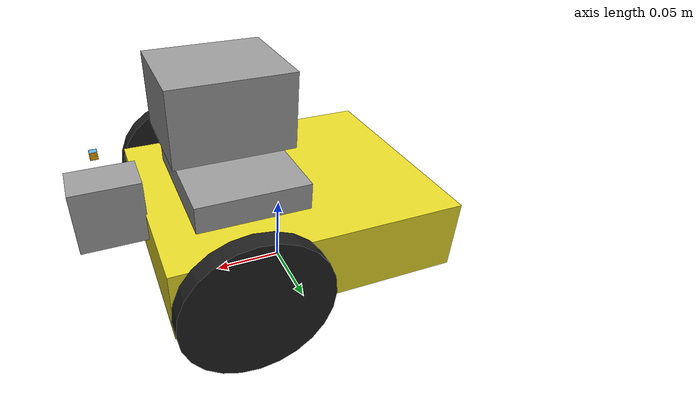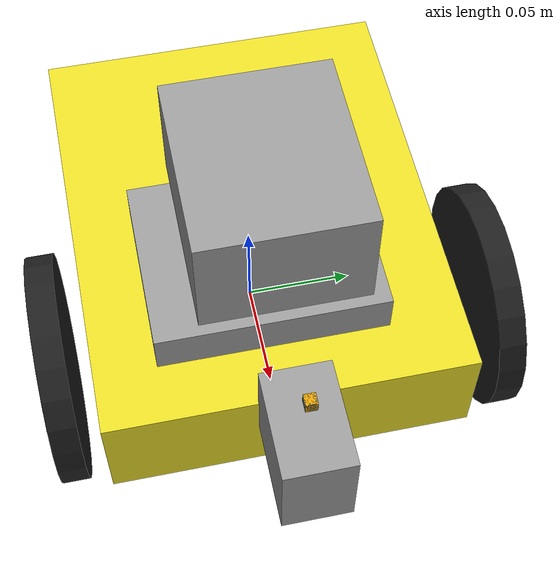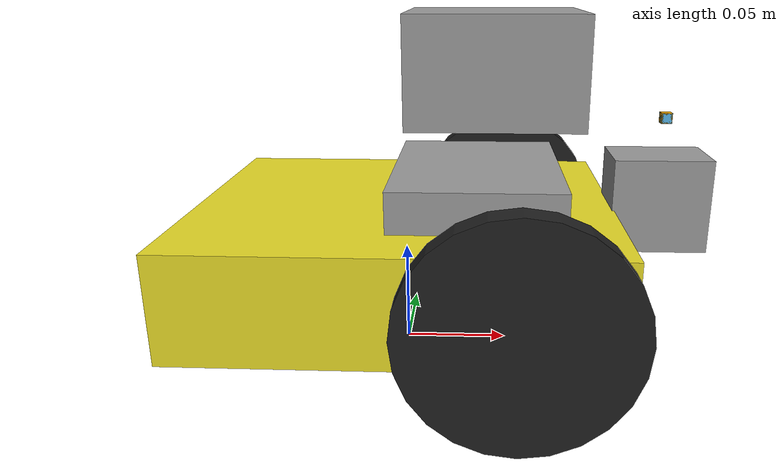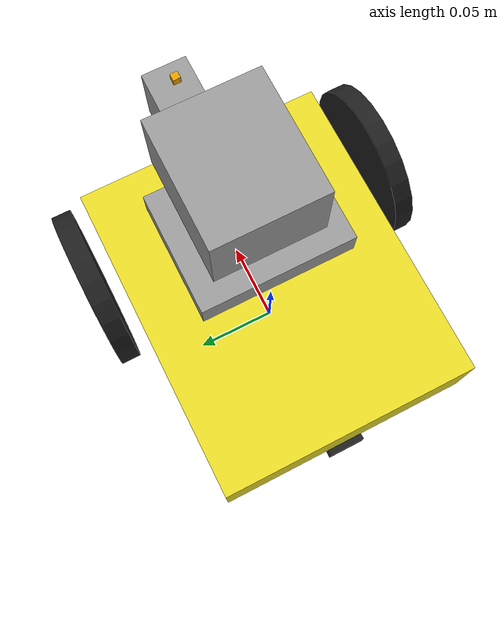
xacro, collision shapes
<?xml version="1.0"?>
<robot xmlns:xacro="http://www.ros.org/wiki/xacro" name="puzzlebot_jetson_lidar_ed">

  <!-- 1) Definimos el argumento prefix -->
  <xacro:arg name="prefix" default=""/>

  <!-- 2) Creamos una propiedad global para prefix -->
  <xacro:property name="prefix" value="$(arg prefix)"/>

  <!-- 3) Includes sin usar xacro:args -->
  <xacro:include filename="$(find familiapachuquena_nav2_puzzlebot)/urdf/mcr2_mechanical/puzzlebot_jetson_lidar_base.urdf.xacro"/>
  <xacro:include filename="$(find familiapachuquena_nav2_puzzlebot)/urdf/mcr2_robots/jetson_lidar_ed/parameters_jetson_lidar_ed.xacro"/>
  <xacro:include filename="$(find familiapachuquena_nav2_puzzlebot)/urdf/mcr2_misc/materials.xacro"/>
  <xacro:include filename="$(find familiapachuquena_nav2_puzzlebot)/urdf/mcr2_misc/macros.xacro"/>
  <xacro:include filename="$(find familiapachuquena_nav2_puzzlebot)/urdf/mcr2_sensors/laser_camera_bracket.xacro"/>
  <xacro:include filename="$(find familiapachuquena_nav2_puzzlebot)/urdf/mcr2_sensors/lidar.xacro"/>
  <xacro:include filename="$(find familiapachuquena_nav2_puzzlebot)/urdf/mcr2_control/gazebo_control.xacro"/>

  <!-- 4) Invocamos los macros / enlaces -->
  <xacro:puzzlebot_jetson_lidar_ed_base prefix="${prefix}"/>
  <xacro:laser_camera_sensor         prefix="${prefix}"/>
  <xacro:rpi_lidar_sensor           prefix="${prefix}"
                                    frame_name="laser_frame"
                                    topic_name="scan"
                                    update_rate="40"/>
  <xacro:puzzlebot_control           prefix="${prefix}"/>

</robot>

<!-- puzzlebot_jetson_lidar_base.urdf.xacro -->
<robot xmlns:xacro="http://www.ros.org/wiki/xacro" name="puzzlebot_hacker_ed_base">

<xacro:macro name="puzzlebot_jetson_lidar_ed_base" params="prefix">

    <!-- Dummy link to fix robot chassis -->
    <link name="${prefix}base_footprint">
    </link>

    <link name="${prefix}base_link">
        <visual>
            <origin xyz="${chassis_mesh_pos_x} ${chassis_mesh_pos_y} ${chassis_mesh_pos_z}" rpy="${chassis_mesh_pos_r} ${chassis_mesh_pos_p} ${chassis_mesh_pos_w}"/>
            <geometry>
                <mesh filename="file://${mesh_puzzlebot_chassis}"/>
            </geometry>
            <material name="yellow"/>
        </visual>

        <collision>
            <origin xyz="${chassis_collision_pos_x} ${chassis_collision_pos_y} ${chassis_collision_pos_z}" rpy="${chassis_collision_pos_r} ${chassis_collision_pos_p} ${chassis_collision_pos_w}"/>
            <geometry>
                <box size="${chassis_length} ${chassis_width} ${chassis_height}"/>
            </geometry>
        </collision>

        <inertial>
            <origin xyz="-${chassis_inertia_pos_x} ${chassis_inertia_pos_y} ${chassis_inertia_pos_z}" rpy="${chassis_inertia_pos_r} ${chassis_inertia_pos_p} ${chassis_inertia_pos_w}"/>
            <mass value="${chassis_mass}"/>
            <xacro:box_inertia mass="${chassis_mass}" x="${chassis_length}" y="${chassis_width}" z="${chassis_height}" />
        </inertial>
    </link>

    <link name="${prefix}wheel_left_link">
        <visual>
            <origin xyz="${wheel_mesh_pos_x} ${wheel_mesh_pos_y} ${wheel_mesh_pos_z}" rpy="${wheel_mesh_pos_r} ${wheel_mesh_pos_p} ${wheel_mesh_pos_w}" />
            <geometry>
                <mesh filename="file://${mesh_puzzlebot_wheel}"/>
            </geometry>
            <material name="black"/>
        </visual>

        <collision>
            <origin xyz="${wheel_collision_pos_x} ${wheel_collision_pos_y} ${wheel_collision_pos_z}" rpy="${wheel_collision_pos_r} ${wheel_collision_pos_p} ${wheel_collision_pos_w}"/>
            <geometry>
                <cylinder length="${wheel_height}" radius="${wheel_radius}" />
            </geometry>
        </collision>

        <inertial>
            <origin xyz="${wheel_inertia_pos_x} ${wheel_inertia_pos_y} ${wheel_inertia_pos_z}" rpy="${wheel_inertia_pos_r} ${wheel_inertia_pos_p} ${wheel_inertia_pos_w}"/>
            <mass value="${wheel_mass}"/>
            <xacro:cylinderical_tube_inertia r1="${wheel_radius}" r2="${wheel_radius/4.0}" height="${wheel_height}" mass="${wheel_mass}"/>
        </inertial>
    </link>

    <link name="${prefix}wheel_right_link">
        <visual>
            <origin xyz="${wheel_mesh_pos_x} ${wheel_mesh_pos_y} ${wheel_mesh_pos_z}" rpy="-${wheel_mesh_pos_r} ${wheel_mesh_pos_p} ${wheel_mesh_pos_w}" />
            <geometry>
                <mesh filename="file://${mesh_puzzlebot_wheel}"/>
            </geometry>
            <material name="black"/>
        </visual>

        <collision>
            <origin xyz="${wheel_collision_pos_x} ${wheel_collision_pos_y} ${wheel_collision_pos_z}" rpy="-${wheel_collision_pos_r} ${wheel_collision_pos_p} ${wheel_collision_pos_w}"/>
            <geometry>
                <cylinder length="${wheel_height}" radius="${wheel_radius}" />
            </geometry>
        </collision>

        <inertial>
            <origin xyz="${wheel_inertia_pos_x} ${wheel_inertia_pos_y} ${wheel_inertia_pos_z}" rpy="-${wheel_inertia_pos_r} ${wheel_inertia_pos_p} ${wheel_inertia_pos_w}"/>
            <mass value="${wheel_mass}"/>
            <xacro:cylinderical_tube_inertia r1="${wheel_radius}" r2="${wheel_radius/4.0}" height="${wheel_height}" mass="${wheel_mass}"/>
        </inertial>
    </link>

    <link name="${prefix}caster_holder_link">
        <visual>
            <origin xyz="${casterholder_mesh_pos_x} ${casterholder_mesh_pos_y} ${casterholder_mesh_pos_z}" rpy="${casterholder_mesh_pos_r} ${casterholder_mesh_pos_p} ${casterholder_mesh_pos_w}"/>
            <geometry>
                <mesh filename="file://${mesh_puzzlebot_caster}"/>
            </geometry>
            <material name="black"/>
        </visual>

        <collision>
            <origin xyz="${casterholder_collision_pos_x} ${casterholder_collision_pos_y} ${casterholder_collision_pos_z}" rpy="${casterholder_collision_pos_r} ${casterholder_collision_pos_p} ${casterholder_collision_pos_w}"/>
            <geometry>
                <box size="${casterholder_length} ${casterholder_width} ${casterholder_height}"/>
            </geometry>
        </collision>

        <inertial>
            <origin xyz="${casterholder_inertia_pos_x} ${casterholder_inertia_pos_y} ${casterholder_inertia_pos_z}" rpy="${casterholder_inertia_pos_r} ${casterholder_inertia_pos_p} ${casterholder_inertia_pos_w}"/>
            <mass value="${casterholder_mass}"/>
            <xacro:box_inertia mass="${casterholder_mass}" x="${casterholder_length}" y="${casterholder_width}" z="${casterholder_height}" />
        </inertial>
    </link>

    <link name="${prefix}wheel_caster_link">
        <collision>
            <origin xyz="${casterball_collision_pos_x} ${casterball_collision_pos_y} ${casterball_collision_pos_z}" rpy="${casterball_collision_pos_r} ${casterball_collision_pos_p} ${casterball_collision_pos_w}"/>
            <geometry>
                <sphere radius="${casterball_radius}"/>
            </geometry>
        </collision>

        <inertial>
            <origin xyz="${casterball_inertia_pos_x} ${casterball_inertia_pos_y} ${casterball_inertia_pos_z}" rpy="${casterball_inertia_pos_r} ${casterball_inertia_pos_p} ${casterball_inertia_pos_w}"/>
            <mass value="${casterball_mass}"/>
            <xacro:solid_sphere_inertia mass="${casterball_mass}" radius="${casterball_radius}" />
        </inertial>
    </link>

    <link name="${prefix}jetson_link">
        <visual>
            <origin xyz="${jetson_mesh_pos_x} ${jetson_mesh_pos_y} ${jetson_mesh_pos_z}" rpy="${jetson_mesh_pos_r} ${jetson_mesh_pos_p} ${jetson_mesh_pos_w}"/>
            <geometry>
                <mesh filename="file://${mesh_puzzlebot_jetson}"/>
            </geometry>
            <material name="grey"/>
        </visual>

        <collision>
            <origin xyz="${jetson_collision_pos_x} ${jetson_collision_pos_y} ${jetson_collision_pos_z}" rpy="${jetson_collision_pos_r} ${jetson_collision_pos_p} ${jetson_collision_pos_w}"/>
            <geometry>
                <box size="${jetson_length} ${jetson_width} ${jetson_height+jetson_offset}"/>
            </geometry>
        </collision>

        <inertial>
            <origin xyz="${jetson_inertia_pos_x} ${jetson_inertia_pos_y} ${jetson_inertia_pos_z}" rpy="${jetson_inertia_pos_r} ${jetson_inertia_pos_p} ${jetson_inertia_pos_w}"/>
            <mass value="${jetson_mass}"/>
            <xacro:box_inertia mass="${jetson_mass}" x="${jetson_length}" y="${jetson_width}" z="${jetson_height}" />
        </inertial>
    </link>

    <!--JOINTS-->

    <joint name="${prefix}chassis_joint" type="fixed">
        <parent link="${prefix}base_footprint"/>
        <child link="${prefix}base_link"/>
        <origin xyz="${chassis_pos_x} ${chassis_pos_y} ${chassis_pos_z}" rpy="${chassis_pos_r} ${chassis_pos_p} ${chassis_pos_w}"/>
    </joint>

    <joint name="${prefix}wheel_right_joint" type="continuous">
        <parent link="${prefix}base_link"/>
        <child link="${prefix}wheel_right_link"/>
        <origin xyz="${wheel_pos_x} -${wheel_pos_y} ${wheel_pos_z}" rpy="${wheel_pos_r} ${wheel_pos_p} ${wheel_pos_w}"/>
        <axis xyz="0 1 0"/>
    </joint>

    <joint name="${prefix}wheel_left_joint" type="continuous">
        <parent link="${prefix}base_link"/>
        <child link="${prefix}wheel_left_link"/>
        <origin xyz="${wheel_pos_x} ${wheel_pos_y} ${wheel_pos_z}" rpy="${wheel_pos_r} ${wheel_pos_p} ${wheel_pos_w}"/>
        <axis xyz="0 1 0"/>
    </joint>

    <joint name="${prefix}caster_holder_joint" type="fixed">
        <parent link="${prefix}base_link"/>
        <child link="${prefix}caster_holder_link"/>
        <origin xyz="${casterholder_pos_x} ${casterholder_pos_y} ${casterholder_pos_z}" rpy="${casterholder_pos_r} ${casterholder_pos_p} ${casterholder_pos_w}"/>
    </joint>

    <joint name="${prefix}wheel_caster_joint" type="fixed">
        <parent link="${prefix}caster_holder_link"/>
        <child link="${prefix}wheel_caster_link"/>
        <origin xyz="${casterball_pos_x} ${casterball_pos_y} ${casterball_pos_z}" rpy="${casterball_pos_r} ${casterball_pos_p} ${casterball_pos_w}"/>
    </joint>

    <joint name="${prefix}jetson_joint" type="fixed">
        <parent link="${prefix}base_link"/>
        <child link="${prefix}jetson_link"/>
        <origin xyz="${jetson_pos_x} ${jetson_pos_y} ${jetson_pos_z}" rpy="${jetson_pos_r} ${jetson_pos_p} ${jetson_pos_w}"/>
    </joint>

    <gazebo reference="${prefix}wheel_left_link">
        <mu1>1.0</mu1>
        <mu2>1.0</mu2>
        <kp>700000.0</kp>
        <kd>80.0</kd>
        <minDepth>0.001</minDepth>
        <maxVel>0.1</maxVel>
        <material>Gazebo/Black</material>
        <fdir1>1 0 0</fdir1>
    </gazebo>

    <gazebo reference="${prefix}wheel_right_link">
        <mu1>1.0</mu1>
        <mu2>1.0</mu2>
        <kp>700000.0</kp>
        <kd>80.0</kd>
        <minDepth>0.001</minDepth>
        <maxVel>0.1</maxVel>
        <material>Gazebo/Black</material>
        <fdir1>1 0 0</fdir1>
    </gazebo>

    <gazebo reference="${prefix}wheel_caster_link">
        <mu1>0.08</mu1>
        <mu2>0.08</mu2>
        <kp>700000.0</kp>
        <kd>80.0</kd>
        <minDepth>0.001</minDepth>
        <maxVel>0.1</maxVel>
        <fdir1>1 0 0</fdir1>
        <material>Gazebo/Black</material>
    </gazebo>

</xacro:macro>

<!-- ==== Transmissions para ros2_control ==== -->
  <transmission name="left_wheel_trans">
    <type>transmission_interface/SimpleTransmission</type>
    <joint name="${prefix}wheel_left_joint">
      <hardwareInterface>hardware_interface/VelocityJointInterface</hardwareInterface>
    </joint>
    <actuator name="left_wheel_motor">
      <mechanicalReduction>1</mechanicalReduction>
    </actuator>
  </transmission>

  <transmission name="right_wheel_trans">
    <type>transmission_interface/SimpleTransmission</type>
    <joint name="${prefix}wheel_right_joint">
      <hardwareInterface>hardware_interface/VelocityJointInterface</hardwareInterface>
    </joint>
    <actuator name="right_wheel_motor">
      <mechanicalReduction>1</mechanicalReduction>
    </actuator>
  </transmission>

  <!-- ==== Plugin ros2_control para Ignition Gazebo (Sim 7) ==== -->
  <gazebo>
    <plugin name="ros2_control" filename="libignition_ros2_control.so"/>
  </gazebo>
</robot>

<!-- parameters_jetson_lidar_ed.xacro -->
<robot xmlns:xacro="http://www.ros.org/wiki/xacro">

    <!--General parameters-->
    <xacro:property name="PI" value="3.1415926535897931"/>

    <!--Puzzlebot parameters-->
        <!--General parameters-->
            <xacro:property name="wheel_base_distance" value="0.19"/>

    <!--Chassis-->
        <!--Chassis Inertial/Collision parameters-->
            <xacro:property name="chassis_mass" value="0.351"/>
            <xacro:property name="chassis_length" value="0.2"/>
            <xacro:property name="chassis_width" value="0.16"/>
            <xacro:property name="chassis_height" value="0.0503"/>

            <xacro:property name="chassis_inertia_pos_x" value="0.00"/>
            <xacro:property name="chassis_inertia_pos_y" value="0.0"/>
            <xacro:property name="chassis_inertia_pos_z" value="0.00"/>
            <xacro:property name="chassis_inertia_pos_r" value="0.00"/>
            <xacro:property name="chassis_inertia_pos_p" value="0.0"/>
            <xacro:property name="chassis_inertia_pos_w" value="0.0"/>

            <xacro:property name="chassis_collision_pos_x" value="0.0"/>
            <xacro:property name="chassis_collision_pos_y" value="0.0"/>
            <xacro:property name="chassis_collision_pos_z" value="0.0"/>
            <xacro:property name="chassis_collision_pos_r" value="0.0"/>
            <xacro:property name="chassis_collision_pos_p" value="0.0"/>
            <xacro:property name="chassis_collision_pos_w" value="0.0"/>

        <!--Chassis Visual parameters-->
            <xacro:property name="chassis_mesh_pos_x" value="0.0"/>
            <xacro:property name="chassis_mesh_pos_y" value="0.0"/>
            <xacro:property name="chassis_mesh_pos_z" value="0.0"/>
            <xacro:property name="chassis_mesh_pos_r" value="0.0"/>
            <xacro:property name="chassis_mesh_pos_p" value="0.0"/>
            <xacro:property name="chassis_mesh_pos_w" value="0.0"/>

        <!--Chassis Joint parameters-->
            <xacro:property name="chassis_pos_x" value="0.0"/>
            <xacro:property name="chassis_pos_y" value="0.0"/>
            <xacro:property name="chassis_pos_z" value="0.05"/>
            <xacro:property name="chassis_pos_r" value="0.0"/>
            <xacro:property name="chassis_pos_p" value="0.0"/>
            <xacro:property name="chassis_pos_w" value="0.0"/>

    <!--Caster Holder-->
        <!--Caster Holder Inertial/Collision parameters-->
            <xacro:property name="casterholder_mass" value="0.007"/>
            <xacro:property name="casterholder_length" value="0.0175"/>
            <xacro:property name="casterholder_width" value="0.023"/>
            <xacro:property name="casterholder_height" value="0.011150"/>

            <xacro:property name="casterholder_inertia_pos_x" value="0.0"/>
            <xacro:property name="casterholder_inertia_pos_y" value="0.0"/>
            <xacro:property name="casterholder_inertia_pos_z" value="0.0"/>
            <xacro:property name="casterholder_inertia_pos_r" value="0.0"/>
            <xacro:property name="casterholder_inertia_pos_p" value="0.0"/>
            <xacro:property name="casterholder_inertia_pos_w" value="0.0"/>

            <xacro:property name="casterholder_collision_pos_x" value="0.0"/>
            <xacro:property name="casterholder_collision_pos_y" value="0.0"/>
            <xacro:property name="casterholder_collision_pos_z" value="0.0"/>
            <xacro:property name="casterholder_collision_pos_r" value="0.0"/>
            <xacro:property name="casterholder_collision_pos_p" value="0.0"/>
            <xacro:property name="casterholder_collision_pos_w" value="0.0"/>

        <!--Caster Holder Visual parameters-->
            <xacro:property name="casterholder_mesh_pos_x" value="0.0"/>
            <xacro:property name="casterholder_mesh_pos_y" value="0.0"/>
            <xacro:property name="casterholder_mesh_pos_z" value="-0.012"/>
            <xacro:property name="casterholder_mesh_pos_r" value="0.0"/>
            <xacro:property name="casterholder_mesh_pos_p" value="0.0"/>
            <xacro:property name="casterholder_mesh_pos_w" value="0.0"/>

        <!--Caster Holder Joint parameters-->
            <xacro:property name="casterholder_pos_x" value="-0.095"/>
            <xacro:property name="casterholder_pos_y" value="0.0"/>
            <xacro:property name="casterholder_pos_z" value="-0.030725"/>
            <xacro:property name="casterholder_pos_r" value="0.0"/>
            <xacro:property name="casterholder_pos_p" value="0.0"/>
            <xacro:property name="casterholder_pos_w" value="0.0"/>

    <!--Caster Ball-->
        <!--Caster Ball Inertial/Collision parameters-->
            <xacro:property name="casterball_mass" value="0.009"/>
            <xacro:property name="casterball_radius" value="0.0065"/>

            <xacro:property name="casterball_inertia_pos_x" value="0.0"/>
            <xacro:property name="casterball_inertia_pos_y" value="0.0"/>
            <xacro:property name="casterball_inertia_pos_z" value="0.0"/>
            <xacro:property name="casterball_inertia_pos_r" value="0.0"/>
            <xacro:property name="casterball_inertia_pos_p" value="0.0"/>
            <xacro:property name="casterball_inertia_pos_w" value="0.0"/>

            <xacro:property name="casterball_collision_pos_x" value="0.0"/>
            <xacro:property name="casterball_collision_pos_y" value="0.0"/>
            <xacro:property name="casterball_collision_pos_z" value="0.0"/>
            <xacro:property name="casterball_collision_pos_r" value="0.0"/>
            <xacro:property name="casterball_collision_pos_p" value="0.0"/>
            <xacro:property name="casterball_collision_pos_w" value="0.0"/>

        <!--Caster Ball Visual parameters-->
            <xacro:property name="casterball_mesh_pos_x" value="0.0"/>
            <xacro:property name="casterball_mesh_pos_y" value="0.0"/>
            <xacro:property name="casterball_mesh_pos_z" value="0.0"/>
            <xacro:property name="casterball_mesh_pos_r" value="0.0"/>
            <xacro:property name="casterball_mesh_pos_p" value="0.0"/>
            <xacro:property name="casterball_mesh_pos_w" value="0.0"/>

        <!--Caster Ball Joint parameters-->
            <xacro:property name="casterball_pos_x" value="0.0"/>
            <xacro:property name="casterball_pos_y" value="0.0"/>
            <xacro:property name="casterball_pos_z" value="-0.012538"/>
            <xacro:property name="casterball_pos_r" value="0.0"/>
            <xacro:property name="casterball_pos_p" value="0.0"/>
            <xacro:property name="casterball_pos_w" value="0.0"/>

    <!--Wheel-->
        <!--Wheel Inertial/Collision parameters-->
            <xacro:property name="wheel_mass" value="0.027"/>
            <xacro:property name="wheel_height" value="0.012"/>
            <xacro:property name="wheel_radius" value="0.05"/>

            <xacro:property name="wheel_inertia_pos_x" value="0.0"/>
            <xacro:property name="wheel_inertia_pos_y" value="0.0"/>
            <xacro:property name="wheel_inertia_pos_z" value="0.0"/>
            <xacro:property name="wheel_inertia_pos_r" value="${PI/2}"/>
            <xacro:property name="wheel_inertia_pos_p" value="0.0"/>
            <xacro:property name="wheel_inertia_pos_w" value="0.0"/>

            <xacro:property name="wheel_collision_pos_x" value="0.0"/>
            <xacro:property name="wheel_collision_pos_y" value="0.0"/>
            <xacro:property name="wheel_collision_pos_z" value="0.0"/>
            <xacro:property name="wheel_collision_pos_r" value="${PI/2}"/>
            <xacro:property name="wheel_collision_pos_p" value="0.0"/>
            <xacro:property name="wheel_collision_pos_w" value="0.0"/>

        <!--Wheel Visual parameters-->
            <xacro:property name="wheel_mesh_pos_x" value="0.0"/>
            <xacro:property name="wheel_mesh_pos_y" value="0.0"/>
            <xacro:property name="wheel_mesh_pos_z" value="0.0"/>
            <xacro:property name="wheel_mesh_pos_r" value="${PI/2}"/>
            <xacro:property name="wheel_mesh_pos_p" value="0.0"/>
            <xacro:property name="wheel_mesh_pos_w" value="0.0"/>

        <!--Wheel Joint parameters-->
            <xacro:property name="wheel_pos_x" value="0.052"/>
            <xacro:property name="wheel_pos_y" value="${wheel_base_distance/2}"/>
            <xacro:property name="wheel_pos_z" value="0.0"/>
            <xacro:property name="wheel_pos_r" value="0.0"/>
            <xacro:property name="wheel_pos_p" value="0.0"/>
            <xacro:property name="wheel_pos_w" value="0.0"/>

    <!--NVIDIA Jetson-->
        <!--Jetson Inertial/Collision parameters-->
            <xacro:property name="jetson_mass" value="0.131"/>
            <xacro:property name="jetson_length" value="0.079"/>
            <xacro:property name="jetson_width" value="0.1"/>
            <xacro:property name="jetson_height" value="0.028271"/>
            <xacro:property name="jetson_offset" value="0.01"/>

            <xacro:property name="jetson_inertia_pos_x" value="0.0075"/>
            <xacro:property name="jetson_inertia_pos_y" value="0.00175"/>
            <xacro:property name="jetson_inertia_pos_z" value="${jetson_offset/2}"/>
            <xacro:property name="jetson_inertia_pos_r" value="0.0"/>
            <xacro:property name="jetson_inertia_pos_p" value="0.0"/>
            <xacro:property name="jetson_inertia_pos_w" value="0.0"/>

            <xacro:property name="jetson_collision_pos_x" value="0.0"/>
            <xacro:property name="jetson_collision_pos_y" value="0.0"/>
            <xacro:property name="jetson_collision_pos_z" value="0.0"/>
            <xacro:property name="jetson_collision_pos_r" value="0.0"/>
            <xacro:property name="jetson_collision_pos_p" value="0.0"/>
            <xacro:property name="jetson_collision_pos_w" value="0.0"/>

        <!--jetson Visual parameters-->
            <xacro:property name="jetson_mesh_pos_x" value="0.0"/>
            <xacro:property name="jetson_mesh_pos_y" value="0.0"/>
            <xacro:property name="jetson_mesh_pos_z" value="0.0"/>
            <xacro:property name="jetson_mesh_pos_r" value="0.0"/>
            <xacro:property name="jetson_mesh_pos_p" value="0.0"/>
            <xacro:property name="jetson_mesh_pos_w" value="0.0"/>

        <!--jetson Joint parameters-->
            <xacro:property name="jetson_pos_x" value="0.035"/>
            <xacro:property name="jetson_pos_y" value="-0.003"/>
            <xacro:property name="jetson_pos_z" value="${chassis_height/2}"/>
            <xacro:property name="jetson_pos_r" value="0.0"/>
            <xacro:property name="jetson_pos_p" value="0.0"/>
            <xacro:property name="jetson_pos_w" value="0.0"/>

    <!--Meshes -->
        <xacro:property name="mesh_puzzlebot_chassis"  value="$(find m3_fampach)/meshes/bases/Puzzlebot_Jetson_Lidar_Edition_Base.stl" />
        <xacro:property name="mesh_puzzlebot_wheel"  value="$(find m3_fampach)/meshes/wheels/Puzzlebot_Wheel.stl" />
        <xacro:property name="mesh_puzzlebot_caster"  value="$(find m3_fampach)/meshes/wheels/Puzzlebot_Caster_Wheel.stl" />
        <xacro:property name="mesh_puzzlebot_jetson"  value="$(find m3_fampach)/meshes/misc/NVIDIA_Jetson.stl" />

</robot>

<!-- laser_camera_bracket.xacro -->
<robot xmlns:xacro="http://www.ros.org/wiki/xacro">

  <xacro:property name="M_PI" value="3.1415926535897931" />

  <xacro:macro name="laser_camera_sensor" params="
    prefix:=''
    camera_name:='cam_1'
    parent:='base_link'
    mesh_file:='file://$(find m3_fampach)/meshes/sensors/Laser_Camera_Bracket.stl'

    camera_base_mass:='0.035'
    camera_base_length:='0.046'
    camera_base_width:='0.030'
    camera_base_height:='0.045'

    camera_base_inertia_pos_x:='0.018'
    camera_base_inertia_pos_y:='0.0'
    camera_base_inertia_pos_z:='0.005'
    camera_base_inertia_pos_r:='0.0'
    camera_base_inertia_pos_p:='0.0'
    camera_base_inertia_pos_w:='0.0'

    camera_base_collision_pos_x:='0.018'
    camera_base_collision_pos_y:='0.0'
    camera_base_collision_pos_z:='0.005'
    camera_base_collision_pos_r:='0.0'
    camera_base_collision_pos_p:='0.0'
    camera_base_collision_pos_w:='0.0'

    camera_base_mesh_pos_x:='0.0'
    camera_base_mesh_pos_y:='0.0'
    camera_base_mesh_pos_z:='0.0'
    camera_base_mesh_pos_r:='0.0'
    camera_base_mesh_pos_p:='0.0'
    camera_base_mesh_pos_w:='0.0'

    camera_base_pos_x:='0.104'
    camera_base_pos_y:='0.00'
    camera_base_pos_z:='0.022'
    camera_base_pos_r:='0.0'
    camera_base_pos_p:='0.0'
    camera_base_pos_w:='0.0'

    camera_pos_x:='0.0201'
    camera_pos_y:='0.00'
    camera_pos_z:='0.045'
    camera_pos_r:='0.0'
    camera_pos_p:='0.0'
    camera_pos_w:='0.0'

    tof_pos_x:='0.04'
    tof_pos_y:='0.00'
    tof_pos_z:='0.0'
    tof_pos_r:='0.0'
    tof_pos_p:='0.0'
    tof_pos_w:='0.0'

    update_rate:='10'
    ray_count:='90'
    min_angle:='-0.707'
    max_angle:='0.707'
    min_range:='0.08'
    max_range:='10.0'
    range_resolution:='0.01'
    topic_name:='tof_sensor'
    always_on:='true'
    visualize:='false'

    ">

    <link name="${prefix}bracket_base_link">
        <visual>
            <origin xyz="${camera_base_mesh_pos_x} ${camera_base_mesh_pos_y} ${camera_base_mesh_pos_z}" rpy="${camera_base_mesh_pos_r} ${camera_base_mesh_pos_p} ${camera_base_mesh_pos_w}"/>
            <geometry>
                <mesh filename="${mesh_file}"/>
            </geometry>
            <material name="grey"/>
        </visual>

        <collision>
            <origin xyz="${camera_base_collision_pos_x} ${camera_base_collision_pos_y} ${camera_base_collision_pos_z}" rpy="${camera_base_collision_pos_r} ${camera_base_collision_pos_p} ${camera_base_collision_pos_w}"/>
            <geometry>
                <box size="${camera_base_length} ${camera_base_width} ${camera_base_height}"/>
            </geometry>
        </collision>

        <inertial>
            <origin xyz="${camera_base_inertia_pos_x} ${camera_base_inertia_pos_y} ${camera_base_inertia_pos_z}" rpy="${camera_base_inertia_pos_r} ${camera_base_inertia_pos_p} ${camera_base_inertia_pos_w}"/>
            <mass value="${camera_base_mass}"/>
            <xacro:box_inertia mass="${camera_base_mass}" x="${camera_base_length}" y="${camera_base_width}" z="${camera_base_height}" />
        </inertial>
    </link>

    <link name="${prefix}camera_link">
        <collision>
            <origin xyz="0 0 0" rpy="0 0 0"/>
            <geometry>
                <box size="0.005 0.005 0.005"/>
            </geometry>
        </collision>

        <inertial>
            <origin xyz="0 0 0" rpy="0 0 0"/>
            <mass value="1e-5"/>
            <xacro:box_inertia mass="1e-5" x="0.005" y="0.005" z="0.005" />
        </inertial>
    </link>

    <link name="${prefix}camera_link_optical">
        <collision>
            <origin xyz="0 0 0" rpy="0 0 0"/>
            <geometry>
                <box size="0.005 0.005 0.005"/>
            </geometry>
        </collision>

        <inertial>
            <origin xyz="0 0 0" rpy="0 0 0"/>
            <mass value="1e-5"/>
            <xacro:box_inertia mass="1e-5" x="0.005" y="0.005" z="0.005" />
        </inertial>
    </link>

    <link name="${prefix}tof_link">
        <collision>
            <origin xyz="0 0 0" rpy="0 0 0"/>
            <geometry>
                <box size="0.001 0.001 0.001"/>
            </geometry>
        </collision>

        <inertial>
            <origin xyz="0 0 0" rpy="0 0 0"/>
            <mass value="1e-5"/>
            <xacro:box_inertia mass="1e-5" x="0.005" y="0.005" z="0.005" />
        </inertial>
    </link>

    <!--JOINTS-->

    <joint name="${prefix}camera_base_joint" type="fixed">
        <parent link="${prefix}${parent}"/>
        <child link="${prefix}bracket_base_link"/>
        <origin xyz="${camera_base_pos_x} ${camera_base_pos_y} ${camera_base_pos_z}" rpy="${camera_base_pos_r} ${camera_base_pos_p} ${camera_base_pos_w}"/>
    </joint>

    <joint name="${prefix}camera_joint" type="fixed">
        <parent link="${prefix}bracket_base_link"/>
        <child link="${prefix}camera_link"/>
        <origin xyz="${camera_pos_x} ${camera_pos_y} ${camera_pos_z}" rpy="${camera_pos_r} ${camera_pos_p} ${camera_pos_w}"/>
    </joint>

    <joint name="${prefix}camera_optical_joint" type="fixed">
        <parent link="${prefix}camera_link"/>
        <child link="${prefix}camera_link_optical"/>
        <origin xyz="0 0 0" rpy="${-M_PI/2} 0.0 ${-M_PI/2}"/>
    </joint>

    <joint name="${prefix}tof_joint" type="fixed">
        <parent link="${prefix}bracket_base_link"/>
        <child link="${prefix}tof_link"/>
        <origin xyz="${tof_pos_x} ${tof_pos_y} ${tof_pos_z}" rpy="${tof_pos_r} ${tof_pos_p} ${tof_pos_w}"/>
    </joint>

    <gazebo reference="${prefix}camera_link">
            <sensor type="camera" name="${prefix}camera_sensor">
                <pose>0 0 0 0 0 0</pose>
                <topic>${prefix}camera</topic>
                <camera>
                    <horizontal_fov>1.089</horizontal_fov>
                    <image>
                        <width>640</width>
                        <height>480</height>
                        <format>R8G8B8</format>
                    </image>
                    <clip>
                        <near>0.1</near>
                        <far>8.0</far>
                    </clip>
                    <noise>
                        <type>gaussian</type>
                        <mean>0.0</mean>
                        <stddev>0.007</stddev>
                    </noise>
                </camera>
                <always_on>1</always_on>
                <gz_frame_id>${prefix}camera_link_optical</gz_frame_id>
                <update_rate>10</update_rate>
                <visualize>false</visualize>
            </sensor>
    </gazebo>

   <gazebo reference="${prefix}tof_link">
        <sensor name="${prefix}tof_sensor" type="gpu_lidar">
            <topic>${prefix}tof_scan</topic>
            <pose> 0 0 0 0 0 0 </pose>
            <update_rate>${update_rate}</update_rate>
            <always_on>${always_on}</always_on>
            <visualize>${visualize}</visualize>
            <gz_frame_id>${prefix}tof_link</gz_frame_id>
            <ray>
            <scan>
                <horizontal>
                <samples>${ray_count}</samples>
                <resolution>1</resolution>
                <min_angle>${min_angle}</min_angle>
                <max_angle>${max_angle}</max_angle>
                </horizontal>
                <vertical>
                <samples>1</samples>
                <resolution>0.01</resolution>
                <min_angle>0</min_angle>
                <max_angle>0</max_angle>
                </vertical>
            </scan>
            <range>
                <min>${min_range}</min>
                <max>${max_range}</max>
                <resolution>${range_resolution}</resolution>
            </range>
            </ray>
        </sensor>
    </gazebo>

    </xacro:macro>
</robot>

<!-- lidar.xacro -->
<robot xmlns:xacro="http://www.ros.org/wiki/xacro">

  <xacro:property name="M_PI" value="3.1415926535897931" />

  <xacro:macro name="rpi_lidar_sensor" params="
    prefix:=''
    frame_name:='laser_frame'
    parent:='base_link'
    mesh_file:='file://$(find familiapachuquena_nav2_puzzlebot)/meshes/sensors/RPLidar.stl'

    lidar_base_mass:='0.1755'
    lidar_base_length:='0.08'
    lidar_base_width:='0.07'
    lidar_base_height:='0.05'

    lidar_base_inertia_pos_x:='0.0'
    lidar_base_inertia_pos_y:='0.0'
    lidar_base_inertia_pos_z:='0.021'
    lidar_base_inertia_pos_r:='0.0'
    lidar_base_inertia_pos_p:='0.0'
    lidar_base_inertia_pos_w:='0.0'

    lidar_base_collision_pos_x:='0.0'
    lidar_base_collision_pos_y:='0.0'
    lidar_base_collision_pos_z:='0.021'
    lidar_base_collision_pos_r:='0.0'
    lidar_base_collision_pos_p:='0.0'
    lidar_base_collision_pos_w:='0.0'

    lidar_base_mesh_pos_x:='0.0'
    lidar_base_mesh_pos_y:='0.0'
    lidar_base_mesh_pos_z:='0.025'
    lidar_base_mesh_pos_r:='0.0'
    lidar_base_mesh_pos_p:='0.0'
    lidar_base_mesh_pos_w:='0.0'

    lidar_base_pos_x:='0.0425'
    lidar_base_pos_y:='0.00'
    lidar_base_pos_z:='0.070'
    lidar_base_pos_r:='0.0'
    lidar_base_pos_p:='0.0'
    lidar_base_pos_w:='0.0'

    lidar_pos_x:='0.0'
    lidar_pos_y:='0.00'
    lidar_pos_z:='0.035'
    lidar_pos_r:='0.0'
    lidar_pos_p:='0.0'
    lidar_pos_w:='0.0'

    update_rate:='10'
    ray_count:='360'
    min_angle:='-3.14159'
    max_angle:='3.14159'
    min_range:='0.15'
    max_range:='12.0'
    range_resolution:='0.017'
    topic_name:='scan'
    always_on:='true'
    visualize:='false'
    ">

    <link name="${prefix}lidar_base_link">
        <visual>
            <origin xyz="${lidar_base_mesh_pos_x} ${lidar_base_mesh_pos_y} ${lidar_base_mesh_pos_z}" rpy="${lidar_base_mesh_pos_r} ${lidar_base_mesh_pos_p} ${lidar_base_mesh_pos_w}"/>
            <geometry>
                <mesh filename="${mesh_file}"/>
            </geometry>
            <material name="grey"/>
        </visual>

        <collision>
            <origin xyz="${lidar_base_collision_pos_x} ${lidar_base_collision_pos_y} ${lidar_base_collision_pos_z}" rpy="${lidar_base_collision_pos_r} ${lidar_base_collision_pos_p} ${lidar_base_collision_pos_w}"/>
            <geometry>
                <box size="${lidar_base_length} ${lidar_base_width} ${lidar_base_height}"/>
            </geometry>
        </collision>

        <inertial>
            <origin xyz="${lidar_base_inertia_pos_x} ${lidar_base_inertia_pos_y} ${lidar_base_inertia_pos_z}" rpy="${lidar_base_inertia_pos_r} ${lidar_base_inertia_pos_p} ${lidar_base_inertia_pos_w}"/>
            <mass value="${lidar_base_mass}"/>
            <xacro:box_inertia mass="${lidar_base_mass}" x="${lidar_base_length}" y="${lidar_base_width}" z="${lidar_base_height}" />
        </inertial>
    </link>

    <link name="${prefix}laser_frame">

        <visual>
            <origin xyz="0 0 0" rpy="0 0 0"/>
            <geometry>
                <box size="0.005 0.005 0.005"/> <!-- Box shape for lidar -->
            </geometry>
            <material name="grey"/>
        </visual>

        <collision>
            <origin xyz="0 0 0" rpy="0 0 0"/>
            <geometry>
                <box size="0.005 0.005 0.005"/>
            </geometry>
        </collision>

        <inertial>
            <origin xyz="0 0 0" rpy="0 0 0"/>
            <mass value="1e-5"/>
            <xacro:box_inertia mass="1e-5" x="0.005" y="0.005" z="0.005" />
        </inertial>
    </link>

    <joint name="${prefix}lidar_base_joint" type="fixed">
        <parent link="${prefix}${parent}"/>
        <child link="${prefix}lidar_base_link"/>
        <origin xyz="${lidar_base_pos_x} ${lidar_base_pos_y} ${lidar_base_pos_z}" rpy="${lidar_base_pos_r} ${lidar_base_pos_p} ${lidar_base_pos_w}"/>
    </joint>

    <joint name="${prefix}lidar_joint" type="fixed">
        <parent link="${prefix}lidar_base_link"/>
        <child link="${prefix}laser_frame"/>
        <origin xyz="${lidar_pos_x} ${lidar_pos_y} ${lidar_pos_z}" rpy="${lidar_pos_r} ${lidar_pos_p} ${lidar_pos_w}"/>
    </joint>

    <gazebo reference="${prefix}laser_frame">
        <sensor name="${prefix}lidar_sensor" type="gpu_lidar">
            <topic>${prefix}${topic_name}</topic>
            <gz_frame_id>${prefix}laser_frame</gz_frame_id>
            <pose> 0 0 0 0 0 0 </pose>
            <update_rate>${update_rate}</update_rate>
            <always_on>${always_on}</always_on>
            <visualize>${visualize}</visualize>
            <ray>
            <scan>
                <horizontal>
                <samples>${ray_count}</samples>
                <resolution>1</resolution>
                <min_angle>${min_angle}</min_angle>
                <max_angle>${max_angle}</max_angle>
                </horizontal>
                <vertical>
                <samples>1</samples>
                <resolution>0.01</resolution>
                <min_angle>0</min_angle>
                <max_angle>0</max_angle>
                </vertical>
            </scan>
            <range>
                <min>${min_range}</min>
                <max>${max_range}</max>
                <resolution>${range_resolution}</resolution>
            </range>
            </ray>
        </sensor>
    </gazebo>

    </xacro:macro>
</robot>
